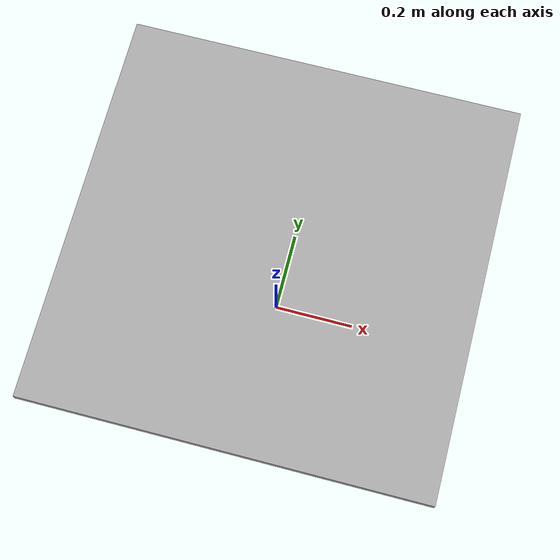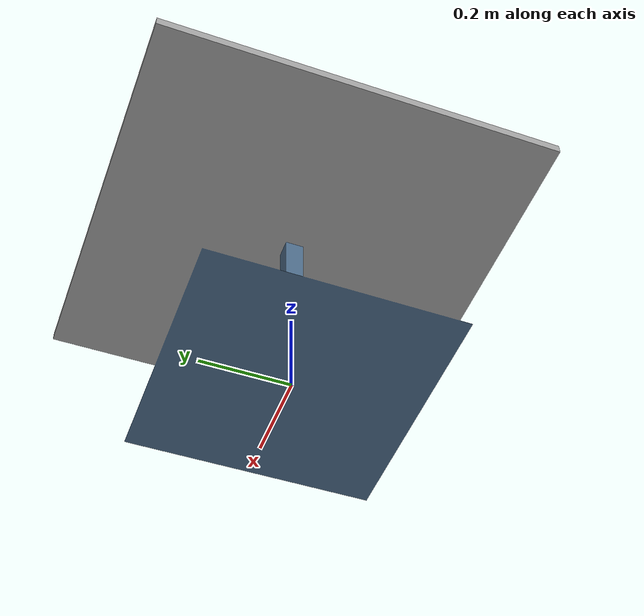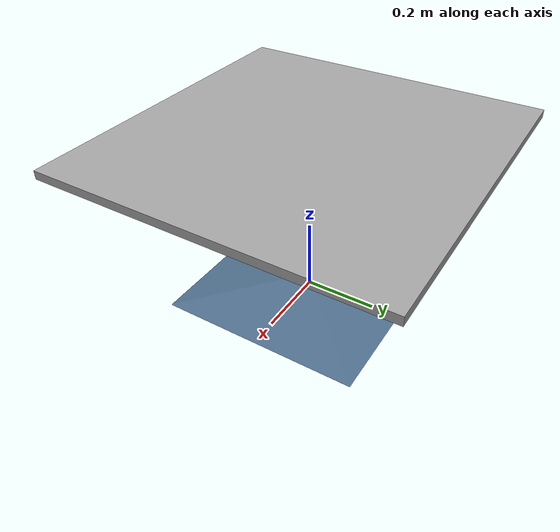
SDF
<?xml version="1.0" ?>
<sdf version="1.5">
  <model name="cafe_table">
    <static>true</static>
    <link name="link">

      <collision name="collision">
        <geometry>
          <mesh>
            <uri>model://cafe_table/meshes/cafe_table_small.dae</uri>
          </mesh>
        </geometry>
      </collision>

      <visual name="visual">
        <geometry>
          <mesh>
            <uri>model://cafe_table/meshes/cafe_table_small.dae</uri>
          </mesh>
        </geometry>
      </visual>
    </link>
  </model>
</sdf>
